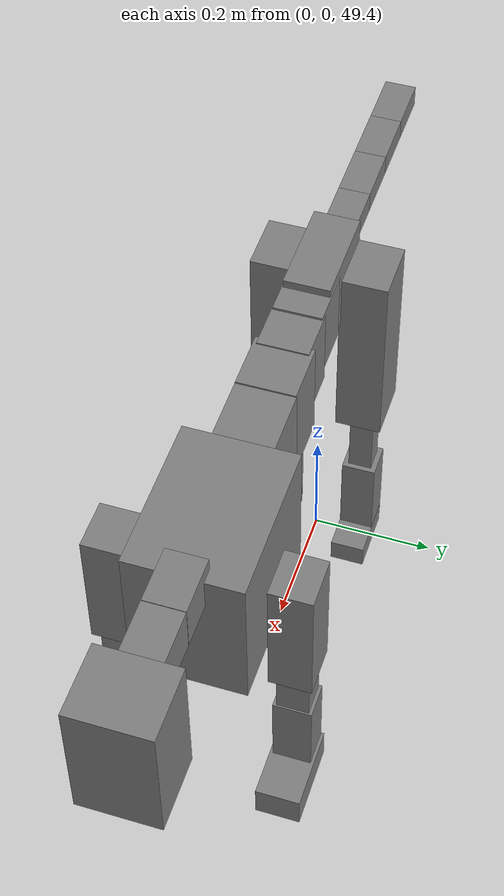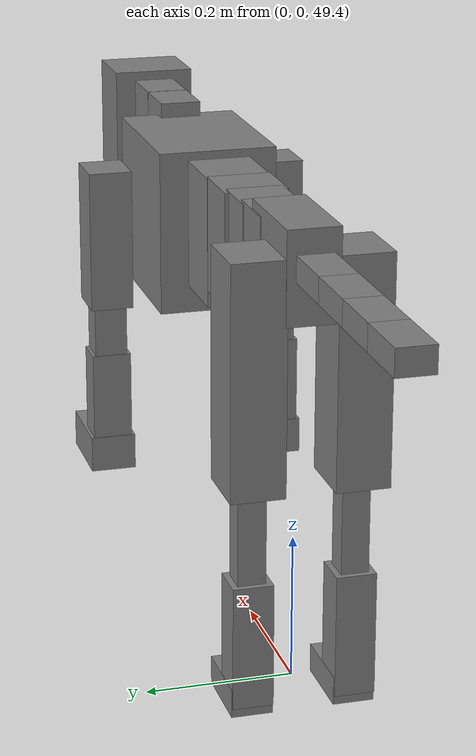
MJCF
<mujoco model="dog">

    <default>
        <joint armature="0.02" stiffness="1" damping="0.2" limited="true"/>
        <geom condim="3" friction="1 0.05 0.05" margin="0.01"/>
        <motor ctrllimited="true" ctrlrange="-1.0 1.0" forcelimited="true" gear="50"/>
    </default>

    <compiler inertiafromgeom="true" angle="radian"/>

    <option timestep="0.016" iterations="50" tolerance="1e-10" solver="Newton" jacobian="dense" cone="pyramidal"/>

    <size nconmax="20000" njmax="60000" nstack="5000000"/>
    <visual>
        <map force="0.1" zfar="30"/>
        <rgba haze="0.15 0.25 0.35 1"/>
        <quality shadowsize="2048"/>
        <global offwidth="800" offheight="800"/>
    </visual>

    <asset>
        <texture type="skybox" builtin="gradient" rgb1="0.3 0.5 0.7" rgb2="0 0 0" width="512" height="512"/>
        <texture name="texplane" type="2d" builtin="checker" rgb1=".2 .3 .4" rgb2=".1 0.15 0.2" width="512" height="512"
                 mark="cross" markrgb=".8 .8 .8"/>
        <texture name="texgeom" type="cube" builtin="flat" mark="cross" width="127" height="1278" rgb1="0.8 0.6 0.4"
                 rgb2="0.8 0.6 0.4" markrgb="1 1 1" random="0.01"/>

        <material name="matplane" reflectance="0.3" texture="texplane" texrepeat="1 1" texuniform="true"/>
        <material name="matgeom" texture="texgeom" texuniform="true" rgba="0.8 0.6 .4 1"/>
    </asset>

    <worldbody>
        <geom name="floor" pos="0 0 0" size="0 0 .25" type="plane" material="matplane" condim="3"/>

        <light directional="false" diffuse=".2 .2 .2" specular="0 0 0" pos="0 0 5" dir="0 0 -1" castshadow="false"/>
        <light mode="targetbodycom" target="torso" directional="false" diffuse=".8 .8 .8" specular="0.3 0.3 0.3"
               pos="0 0 4.0" dir="0 0 -1"/>

        <body name="root" pos="0 0 50">
            <freejoint name="root_1"/>
            <geom type="box" pos="0 0 -0.02" size="0.0774  0.0358  0.063" density="2030"/>

            <body name="spine1" pos="0.054 0 0">
                <joint name="spine1_y" axis="0 1 0" range="0 0.7" limited="true"/>
                <geom type="box" pos="0.02375 0 -0.03" size="0.04375  0.0375  0.05985" density="2030"/>

                <body name="spine2" pos="0.0612 0 0">
                    <joint name="spine2_y" axis="0 1 0" range="-0.15 0.15" limited="true"/>
                    <geom type="box" pos="0.03555  0  -0.04" size="0.04055  0.039  0.06615" density="2030"/>

                    <body name="spine3" pos="0.0730 0 0">
                        <joint name="spine3_y" axis="0 1 0" range="-0.15 0.15" limited="true"/>
                        <geom type="box" pos="0.03555  0  -0.057" size="0.04555  0.0445  0.081" density="2030"/>

                        <body name="spine4" pos="0.0780 0 0">
                            <joint name="spine4_y" axis="0 1 0" range="-0.15 0.15" limited="true"/>
                            <geom type="box" pos="0.05265  0  -0.07" size="0.05265  0.045  0.09135" density="2030"/>

                            <body name="torso" pos="0.1082 0 0">
                                <joint name="torso_y" axis="0 1 0" range="-0.15 0.15" limited="true"/>
                                <geom type="box" pos="0.11925  0  -0.085" size="0.11925  0.085  0.11745"
                                      density="2030"/>

                                <body name="neck1" pos="0.2160  0   0.0180">
                                    <joint name="neck1_y" axis="0 1 0" range="-1.2  -1" limited="true"/>
                                    <geom type="box" pos="0.0423  0  0" size="0.0423  0.03  0.036" density="2325"/>

                                    <body name="neck2" pos="0.0853  0  0">
                                        <joint name="neck2_y" axis="0 1 0" range="0.1  0" limited="true"/>
                                        <geom type="box" pos="0.0423  0  0" size="0.0423  0.03  0.036" density="2325"/>

                                        <body name="head" pos="0.0853  0  0">
                                            <joint name="head_y" axis="0 1 0" range="-0.3  -0.2" limited="true"/>
                                            <geom type="box" pos="0.0531  0  -0.055" size="0.0531  0.06  0.1044"
                                                  density="4030"/>

                                        </body>
                                    </body>
                                </body>

                                <body name="front_shoulder" pos="0.156  0   -0.0480">
                                    <joint name="front_shoulder_y" axis="0 1 0" range="-1 1.5" limited="true"/>
                                    <geom type="box" pos="0 0.13 -0.0769" size="0.0369  0.0315  0.1036" density="1158"/>
                                    <geom type="box" pos="0 -0.13 -0.0769" size="0.0369  0.0315  0.1036"
                                          density="1158"/>

                                    <body name="front_elbow" pos="0  0  -0.1539">
                                        <joint name="front_elbow_y" axis="0 1 0" range="-2 0" limited="true"/>
                                        <geom type="box" pos="0 0.13 -0.0575" size="0.0235  0.0240  0.0575"
                                              density="1081"/>
                                        <geom type="box" pos="0 -0.13 -0.0575" size="0.0235  0.0240  0.0575"
                                              density="1081"/>

                                        <body name="front_wrist" pos="0  0  -0.1150">
                                            <joint name="front_wrist_y" axis="0 1 0" range="-0.2 0" limited="true"/>
                                            <geom type="box" pos="0 0.13 -0.0653" size="0.0260  0.0289  0.0785"
                                                  density="1664"/>
                                            <geom type="box" pos="0 -0.13 -0.0653" size="0.0260  0.0289  0.0785"
                                                  density="1664"/>

                                            <body name="front_finger_end" pos="0  0  -0.1307">
                                                <joint name="front_finger_y" axis="0 1 0" range="-0.4 1"
                                                       limited="true"/>
                                                <geom type="box" pos="0.0334  0.13  -0.0117"
                                                      size="0.0612  0.0334  0.0267" density="1515"/>
                                                <geom type="box" pos="0.0334  -0.13  -0.0117"
                                                      size="0.0612  0.0334  0.0267" density="1515"/>

                                            </body>

                                        </body>
                                    </body>
                                </body>

                            </body>
                        </body>
                    </body>
                </body>
            </body>

            <body name="back_hip" pos="-0.03 0 -0.018">
                <joint name="back_hip_y" axis="0 1 0" range="-1.5 0.3" limited="true"/>
                <geom type="box" pos="0 0.07 -0.1351" size="0.0469  0.0368  0.1579" density="1154"/>
                <geom type="box" pos="0 -0.07 -0.1351" size="0.0469  0.0368  0.1579" density="1154"/>

                <body name="back_knee" pos="0  0  -0.2702">
                    <joint name="back_knee_y" axis="0 1 0" range="0 2.8" limited="true"/>
                    <geom type="box" pos="0 0.07 -0.0808" size="0.0194  0.0191  0.0963" density="1227"/>
                    <geom type="box" pos="0 -0.07 -0.0808" size="0.0194  0.0191  0.0963" density="1227"/>

                    <body name="back_ankle" pos="0  0  -0.1615">
                        <joint name="back_ankle_y" axis="0 1 0" range="-2.2 0" limited="true"/>
                        <geom type="box" pos="0 0.07 -0.0749" size="0.0277  0.0277  0.0861" density="1284"/>
                        <geom type="box" pos="0 -0.07 -0.0749" size="0.0277  0.0277  0.0861" density="1284"/>

                        <body name="back_toe_end" pos="0  0  -0.1498">
                            <joint name="back_toe_y" axis="0 1 0" range="-0.4 1" limited="true"/>
                            <geom type="box" pos="0.0281  0.07  -0.0049" size="0.0515  0.0281  0.0199" density="1515"/>
                            <geom type="box" pos="0.0281  -0.07  -0.0049" size="0.0515  0.0281  0.0199" density="1515"/>

                        </body>
                    </body>
                </body>
            </body>

            <body name="tail1" pos="-0.074 0 -0.006">
                <joint name="tail1_y" axis="0 1 0" range="-0.2 0.2" limited="true"/>
                <geom type="box" pos="-0.0536  0  0" size="0.045  0.025  0.0175" density="1587"/>

                <body name="tail2" pos="-0.09 0 0">
                    <joint name="tail2_y" axis="0 1 0" range="-0.2 0.2" limited="true"/>
                    <geom type="box" pos="-0.0536  0  0" size="0.045  0.025  0.0175" density="1587"/>

                    <body name="tail3" pos="-0.09 0 0">
                        <joint name="tail3_y" axis="0 1 0" range="-0.2 0.2" limited="true"/>
                        <geom type="box" pos="-0.0536  0  0" size="0.045  0.025  0.0175" density="1587"/>

                        <body name="tail4" pos="-0.09 0 0">
                            <joint name="tail4_y" axis="0 1 0" range="-0.2 0.2" limited="true"/>
                            <geom type="box" pos="-0.0536  0  0" size="0.045  0.025  0.0175" density="1587"/>

                        </body>
                    </body>
                </body>
            </body>
        </body>
    </worldbody>

    <actuator>
        <motor joint="spine1_y" forcerange="-150 150     "/>
        <motor joint="spine2_y" forcerange="-150 150     "/>
        <motor joint="spine3_y" forcerange="-150 150     "/>
        <motor joint="spine4_y" forcerange="-150 150     "/>
        <motor joint="torso_y" forcerange="-150 150     "/>
        <motor joint="neck1_y" forcerange="-100 100       "/>
        <motor joint="neck2_y" forcerange="-100 100       "/>
        <motor joint="head_y" forcerange="-150 150       "/>
        <motor joint="front_shoulder_y" forcerange="-144.78 165.51"/>
        <motor joint="front_elbow_y" forcerange="-157.99 116.66"/>
        <motor joint="front_wrist_y" forcerange="-82.16 149.19"/>
        <motor joint="front_finger_y" forcerange="-91.89 46.16"/>
        <motor joint="back_hip_y" forcerange="-352.53 337.63"/>
        <motor joint="back_knee_y" forcerange="-227.47 250.52"/>
        <motor joint="back_angle_y" forcerange="-159.47 184.01"/>
        <motor joint="back_toe_y" forcerange="-85.66 59.20"/>
        <motor joint="tail1_y" forcerange="-50 50     "/>
        <motor joint="tail2_y" forcerange="-50 50     "/>
        <motor joint="tail3_y" forcerange="-50 50     "/>
        <motor joint="tail4_y" forcerange="-50 50     "/>
    </actuator>
</mujoco>
